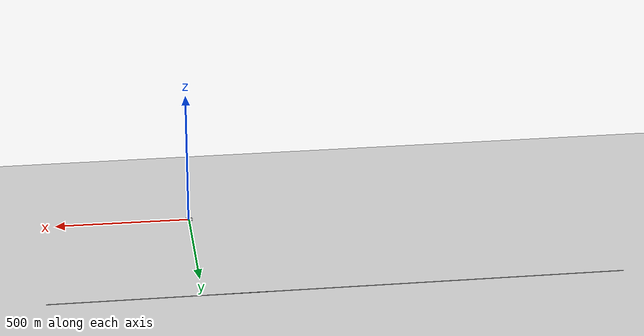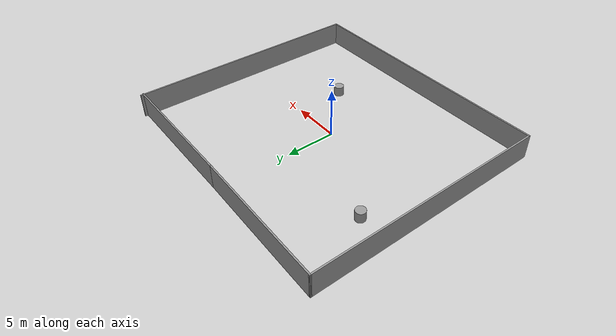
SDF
<sdf version="1.7">
 <world name="default">
  <light name="sun" type="directional">
   <pose>0 0 10 0 -0 0</pose>
   <diffuse>0.8 0.8 0.8 1</diffuse>
   <specular>0.2 0.2 0.2 1</specular>
   <attenuation>
    <range>1000</range>
    <constant>0.9</constant>
    <linear>0.01</linear>
    <quadratic>0.001</quadratic>
   </attenuation>
   <direction>-0.5 0.1 -0.9</direction>
   <spot><inner_angle>0</inner_angle><outer_angle>0</outer_angle><falloff>0</falloff></spot>
  </light>
  <model name="ground_plane">
   <static>1</static>
   <link name="link">
    <collision name="collision">
     <geometry><plane><normal>0 0 1</normal><size>100 100</size></plane></geometry>
     <surface>
      <contact><collide_bitmask>65535</collide_bitmask></contact>
      <friction><ode><mu>100</mu><mu2>50</mu2></ode></friction>
     </surface>
    </collision>
    <visual name="visual">
     <cast_shadows>0</cast_shadows>
     <geometry><plane><normal>0 0 1</normal><size>100 100</size></plane></geometry>
     <material>
      <script><uri>file://media/materials/scripts/gazebo.material</uri><name>Gazebo/Grey</name></script>
     </material>
    </visual>
   </link>
  </model>
  <gravity>0 0 -9.8</gravity>
  <magnetic_field>6e-06 2.3e-05 -4.2e-05</magnetic_field>
  <atmosphere type="adiabatic"/>
  <physics type="ode">
   <max_step_size>0.001</max_step_size>
   <real_time_factor>1</real_time_factor>
   <real_time_update_rate>1000</real_time_update_rate>
  </physics>
  <scene><ambient>0.4 0.4 0.4 1</ambient><background>0.7 0.7 0.7 1</background><shadows>1</shadows></scene>
  <spherical_coordinates>
   <surface_model>EARTH_WGS84</surface_model>
   <latitude_deg>0</latitude_deg>
   <longitude_deg>0</longitude_deg>
   <elevation>0</elevation>
   <heading_deg>0</heading_deg>
  </spherical_coordinates>
  <model name="nagy">
   <pose>-484.374 311.669 0 0 -0 0</pose>
   <link name="Wall_31">
    <collision name="Wall_31_Collision">
     <geometry><box><size>2063.25 0.15 2.5</size></box></geometry>
     <pose>0 0 1.25 0 -0 0</pose>
    </collision>
    <visual name="Wall_31_Visual">
     <pose>0 0 1.25 0 -0 0</pose>
     <geometry><box><size>2063.25 0.15 2.5</size></box></geometry>
     <material>
      <script><uri>file://media/materials/scripts/gazebo.material</uri><name>Gazebo/Grey</name></script>
      <ambient>1 1 1 1</ambient>
     </material>
     <meta><layer>0</layer></meta>
    </visual>
    <pose>0 323.439 0 0 -0 0</pose>
   </link>
   <link name="Wall_32">
    <collision name="Wall_32_Collision">
     <geometry><box><size>1264.75 0.15 2.5</size></box></geometry>
     <pose>0 0 1.25 0 -0 0</pose>
    </collision>
    <visual name="Wall_32_Visual">
     <pose>0 0 1.25 0 -0 0</pose>
     <geometry><box><size>1264.75 0.15 2.5</size></box></geometry>
     <material>
      <script><uri>file://media/materials/scripts/gazebo.material</uri><name>Gazebo/Grey</name></script>
      <ambient>1 1 1 1</ambient>
     </material>
     <meta><layer>0</layer></meta>
    </visual>
    <pose>399.25 323.439 0 0 -0 3.14159</pose>
   </link>
   <link name="Wall_37">
    <collision name="Wall_37_Collision">
     <geometry><box><size>14.072 0.15 2.5</size></box></geometry>
     <pose>0 0 1.25 0 -0 0</pose>
    </collision>
    <visual name="Wall_37_Visual">
     <pose>0 0 1.25 0 -0 0</pose>
     <geometry><box><size>14.072 0.15 2.5</size></box></geometry>
     <material>
      <script><uri>file://media/materials/scripts/gazebo.material</uri><name>Gazebo/Grey</name></script>
      <ambient>1 1 1 1</ambient>
     </material>
     <meta><layer>0</layer></meta>
    </visual>
    <pose>477.897 -299.125 0 0 -0 3.13644</pose>
   </link>
   <link name="Wall_38">
    <collision name="Wall_38_Collision">
     <geometry><box><size>24.5 0.15 2.5</size></box></geometry>
     <pose>0 0 1.25 0 -0 0</pose>
    </collision>
    <visual name="Wall_38_Visual">
     <pose>0 0 1.25 0 -0 0</pose>
     <geometry><box><size>24.5 0.15 2.5</size></box></geometry>
     <material>
      <script><uri>file://media/materials/scripts/gazebo.material</uri><name>Gazebo/Grey</name></script>
      <ambient>1 1 1 1</ambient>
     </material>
     <meta><layer>0</layer></meta>
    </visual>
    <pose>470.936 -311.264 0 0 -0 -1.5708</pose>
   </link>
   <link name="Wall_39">
    <collision name="Wall_39_Collision">
     <geometry><box><size>27.5 0.15 2.5</size></box></geometry>
     <pose>0 0 1.25 0 -0 0</pose>
    </collision>
    <visual name="Wall_39_Visual">
     <pose>0 0 1.25 0 -0 0</pose>
     <geometry><box><size>27.5 0.15 2.5</size></box></geometry>
     <material>
      <script><uri>file://media/materials/scripts/gazebo.material</uri><name>Gazebo/Grey</name></script>
      <ambient>1 1 1 1</ambient>
     </material>
     <meta><layer>0</layer></meta>
    </visual>
    <pose>484.611 -323.439 0 0 -0 0</pose>
   </link>
   <link name="Wall_40">
    <collision name="Wall_40_Collision">
     <geometry><box><size>24.75 0.15 2.5</size></box></geometry>
     <pose>0 0 1.25 0 -0 0</pose>
    </collision>
    <visual name="Wall_40_Visual">
     <pose>0 0 1.25 0 -0 0</pose>
     <geometry><box><size>24.75 0.15 2.5</size></box></geometry>
     <material>
      <script><uri>file://media/materials/scripts/gazebo.material</uri><name>Gazebo/Grey</name></script>
      <ambient>1 1 1 1</ambient>
     </material>
     <meta><layer>0</layer></meta>
    </visual>
    <pose>498.286 -311.139 0 0 -0 1.5708</pose>
   </link>
   <link name="Wall_44">
    <collision name="Wall_44_Collision">
     <geometry><box><size>13.6784 0.15 2.5</size></box></geometry>
     <pose>0 0 1.25 0 -0 0</pose>
    </collision>
    <visual name="Wall_44_Visual">
     <pose>0 0 1.25 0 -0 0</pose>
     <geometry><box><size>13.6784 0.15 2.5</size></box></geometry>
     <material>
      <script><uri>file://media/materials/scripts/gazebo.material</uri><name>Gazebo/Grey</name></script>
      <ambient>1 1 1 1</ambient>
     </material>
     <meta><layer>0</layer></meta>
    </visual>
    <pose>491.622 -299.125 0 0 -0 0.005308</pose>
   </link>
   <static>1</static>
  </model>
  <model name="unit_cylinder">
   <link name="link">
    <inertial>
     <mass>1</mass>
     <inertia><ixx>0.145833</ixx><ixy>0</ixy><ixz>0</ixz><iyy>0.145833</iyy><iyz>0</iyz><izz>0.125</izz></inertia>
    </inertial>
    <visual name="visual">
     <geometry><cylinder><radius>0.5</radius><length>1</length></cylinder></geometry>
     <material>
      <script><name>Gazebo/Grey</name><uri>file://media/materials/scripts/gazebo.material</uri></script>
      <shader type="pixel"/>
     </material>
    </visual>
    <collision name="collision">
     <geometry><cylinder><radius>0.5</radius><length>1</length></cylinder></geometry>
     <surface>
      <friction>
       <ode><mu>1</mu><mu2>1</mu2><fdir1>0 0 0</fdir1><slip1>0</slip1><slip2>0</slip2></ode>
       <torsional>
        <coefficient>1</coefficient>
        <patch_radius>0</patch_radius>
        <surface_radius>0</surface_radius>
        <use_patch_radius>1</use_patch_radius>
        <ode><slip>0</slip></ode>
       </torsional>
      </friction>
      <bounce><restitution_coefficient>0</restitution_coefficient><threshold>1e+06</threshold></bounce>
      <contact>
       <collide_without_contact>0</collide_without_contact>
       <collide_without_contact_bitmask>1</collide_without_contact_bitmask>
       <collide_bitmask>1</collide_bitmask>
       <ode>
        <soft_cfm>0</soft_cfm>
        <soft_erp>0.2</soft_erp>
        <kp>1e+13</kp>
        <kd>1</kd>
        <max_vel>0.01</max_vel>
        <min_depth>0</min_depth>
       </ode>
       <bullet>
        <split_impulse>1</split_impulse>
        <split_impulse_penetration_threshold>-0.01</split_impulse_penetration_threshold>
        <soft_cfm>0</soft_cfm>
        <soft_erp>0.2</soft_erp>
        <kp>1e+13</kp>
        <kd>1</kd>
       </bullet>
      </contact>
     </surface>
    </collision>
   </link>
   <static>0</static>
   <pose>-10 5 0.5 0 -0 0</pose>
  </model>
  <model name="unit_cylinder_clone">
   <link name="link">
    <inertial>
     <mass>1</mass>
     <inertia><ixx>0.145833</ixx><ixy>0</ixy><ixz>0</ixz><iyy>0.145833</iyy><iyz>0</iyz><izz>0.125</izz></inertia>
    </inertial>
    <visual name="visual">
     <geometry><cylinder><radius>0.5</radius><length>1</length></cylinder></geometry>
     <material>
      <script><name>Gazebo/Grey</name><uri>file://media/materials/scripts/gazebo.material</uri></script>
      <shader type="pixel"/>
     </material>
    </visual>
    <collision name="collision">
     <geometry><cylinder><radius>0.5</radius><length>1</length></cylinder></geometry>
     <surface>
      <friction>
       <ode><mu>1</mu><mu2>1</mu2><fdir1>0 0 0</fdir1><slip1>0</slip1><slip2>0</slip2></ode>
       <torsional>
        <coefficient>1</coefficient>
        <patch_radius>0</patch_radius>
        <surface_radius>0</surface_radius>
        <use_patch_radius>1</use_patch_radius>
        <ode><slip>0</slip></ode>
       </torsional>
      </friction>
      <bounce><restitution_coefficient>0</restitution_coefficient><threshold>1e+06</threshold></bounce>
      <contact>
       <collide_without_contact>0</collide_without_contact>
       <collide_without_contact_bitmask>1</collide_without_contact_bitmask>
       <collide_bitmask>1</collide_bitmask>
       <ode>
        <soft_cfm>0</soft_cfm>
        <soft_erp>0.2</soft_erp>
        <kp>1e+13</kp>
        <kd>1</kd>
        <max_vel>0.01</max_vel>
        <min_depth>0</min_depth>
       </ode>
       <bullet>
        <split_impulse>1</split_impulse>
        <split_impulse_penetration_threshold>-0.01</split_impulse_penetration_threshold>
        <soft_cfm>0</soft_cfm>
        <soft_erp>0.2</soft_erp>
        <kp>1e+13</kp>
        <kd>1</kd>
       </bullet>
      </contact>
     </surface>
    </collision>
   </link>
   <static>0</static>
   <pose>5 -5 0.5 0 -0 0</pose>
  </model>
 </world>
</sdf>
